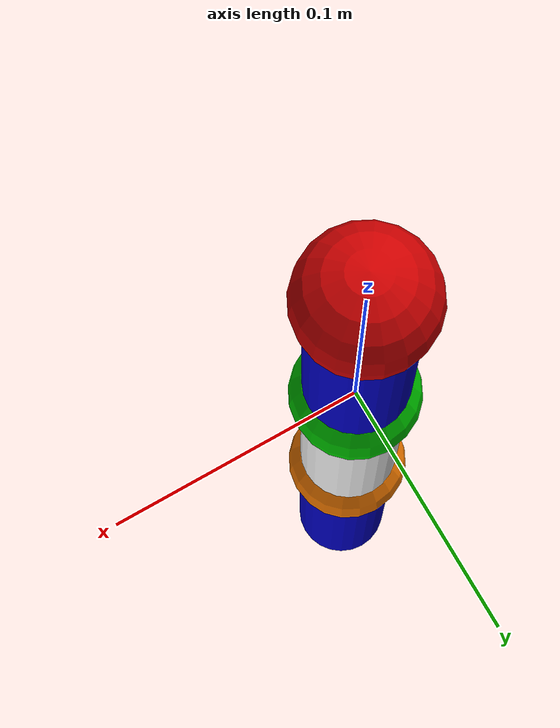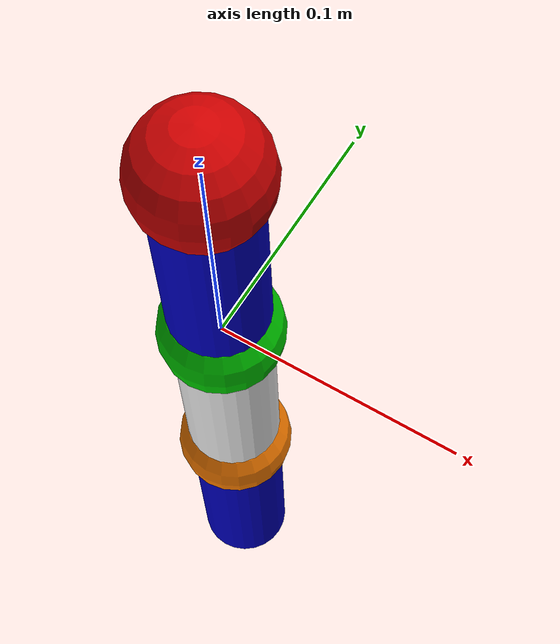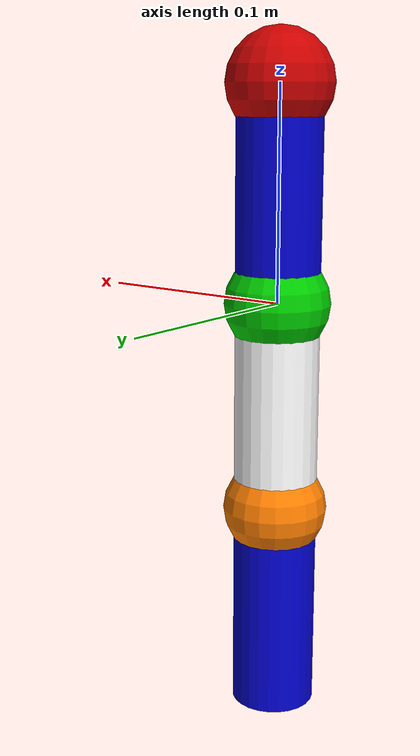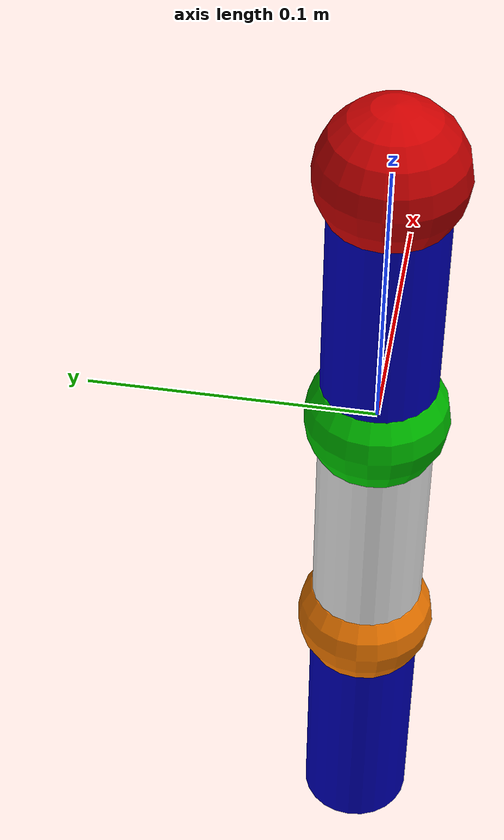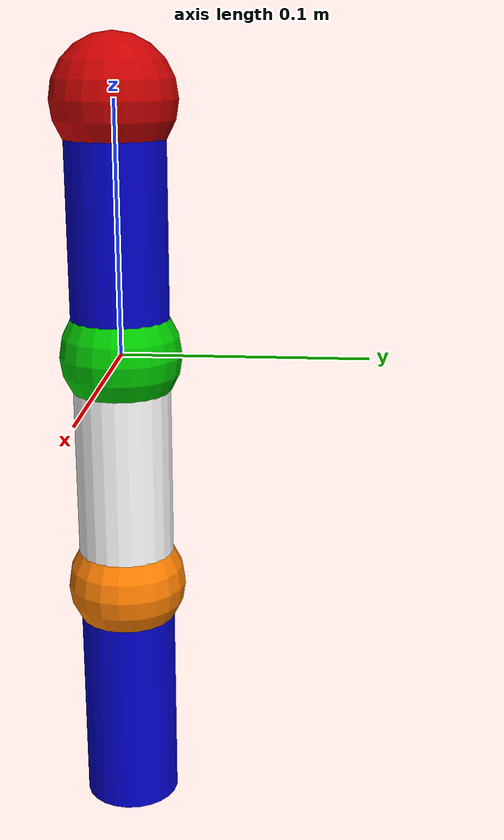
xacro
<?xml version="1.0"?>
<robot xmlns:xacro="http://www.ros.org/wiki/xacro" name="triple_pendulum_arm">

    <!-- MATERIAL DEFINITIONS                         -->
    <material name="blue"><color rgba="0 0 0.8 1"/></material>
    <material name="red"><color rgba="0.8 0 0 1"/></material>
    <material name="green"><color rgba="0 0.8 0 1"/></material>
    <material name="orange"><color rgba="1.0 0.5 0 1"/></material>
    <material name="white"><color rgba="1 1 1 1"/></material>

    <!-- WORLD LINK                                   -->
    <link name="world"/>

    <!-- SPHERE 1 (Base) + JOINT 1                   -->
    <joint name="world_to_sphere1" type="fixed">
        <parent link="world"/>
        <child link="sphere_link_1"/>
        <origin xyz="0 0 0.1" rpy="0 0 0"/>
    </joint>

    <link name="sphere_link_1">
        <visual>
            <geometry><sphere radius="0.025"/></geometry>
            <material name="red"/>
        </visual>
    </link>

    <joint name="joint_1" type="continuous">
        <parent link="sphere_link_1"/>
        <child link="cylinder_link_1"/>
        <origin xyz="0 0 0" rpy="0 0 0"/>
        <axis xyz="0 1 0"/>
    </joint>

    <link name="cylinder_link_1">
        <visual>
            <geometry><cylinder radius="0.02" length="0.1"/></geometry>
            <origin xyz="0 0 -0.05" rpy="0 0 0"/>
            <material name="blue"/>
        </visual>
    </link>

    <!-- SPHERE 2 + JOINT 2                          -->
    <joint name="cylinder_1_to_sphere_2" type="fixed">
        <parent link="cylinder_link_1"/>
        <child link="sphere_link_2"/>
        <origin xyz="0 0 -0.1" rpy="0 0 0"/>
    </joint>

    <link name="sphere_link_2">
        <visual>
            <geometry><sphere radius="0.025"/></geometry>
            <material name="green"/>
        </visual>
    </link>

    <joint name="joint_2" type="continuous">
        <parent link="sphere_link_2"/>
        <child link="cylinder_link_2"/>
        <origin xyz="0 0 0" rpy="0 0 0"/>
        <axis xyz="0 1 0"/>
    </joint>

    <link name="cylinder_link_2">
        <visual>
            <geometry><cylinder radius="0.02" length="0.1"/></geometry>
            <origin xyz="0 0 -0.05" rpy="0 0 0"/>
            <material name="white"/>
        </visual>
    </link>

    <!-- SPHERE 3 + JOINT 3                          -->
    <joint name="cylinder_2_to_sphere_3" type="fixed">
        <parent link="cylinder_link_2"/>
        <child link="sphere_link_3"/>
        <origin xyz="0 0 -0.1" rpy="0 0 0"/>
    </joint>

    <link name="sphere_link_3">
        <visual>
            <geometry><sphere radius="0.025"/></geometry>
            <material name="orange"/>
        </visual>
    </link>

    <joint name="joint_3" type="continuous">
        <parent link="sphere_link_3"/>
        <child link="cylinder_link_3"/>
        <origin xyz="0 0 0" rpy="0 0 0"/>
        <axis xyz="0 1 0"/>
    </joint>

    <link name="cylinder_link_3">
        <visual>
            <geometry><cylinder radius="0.02" length="0.1"/></geometry>
            <origin xyz="0 0 -0.05" rpy="0 0 0"/>
            <material name="blue"/>
        </visual>
    </link>

</robot>
